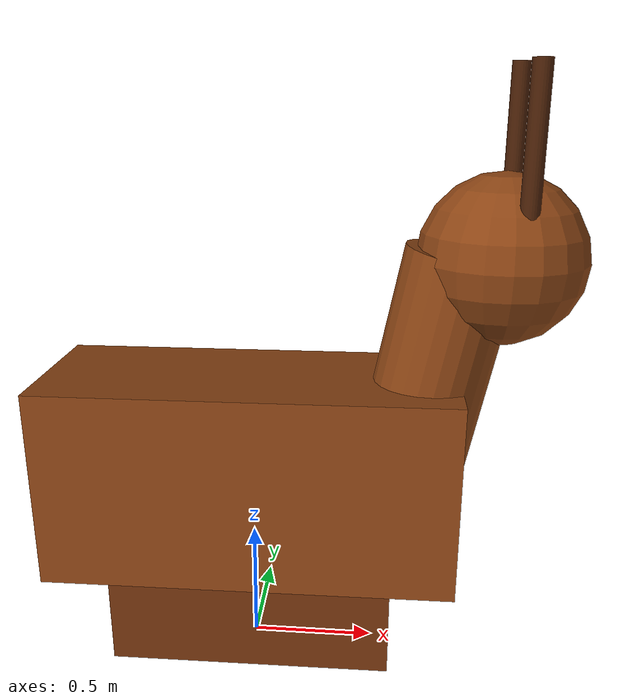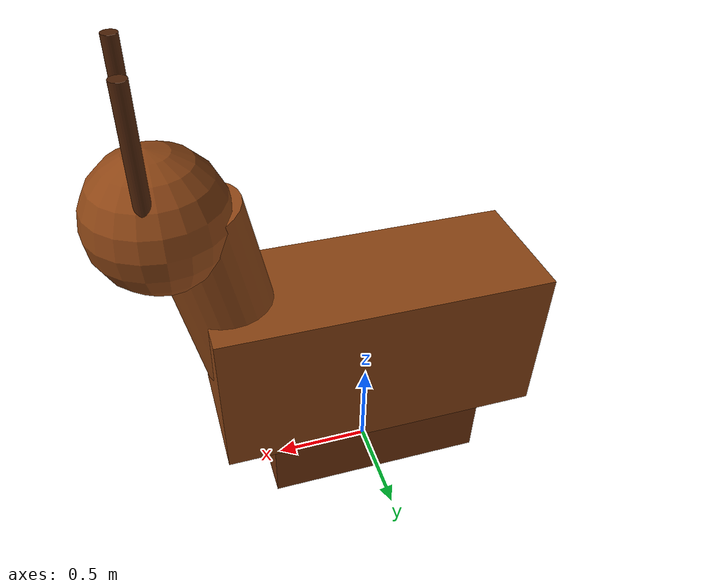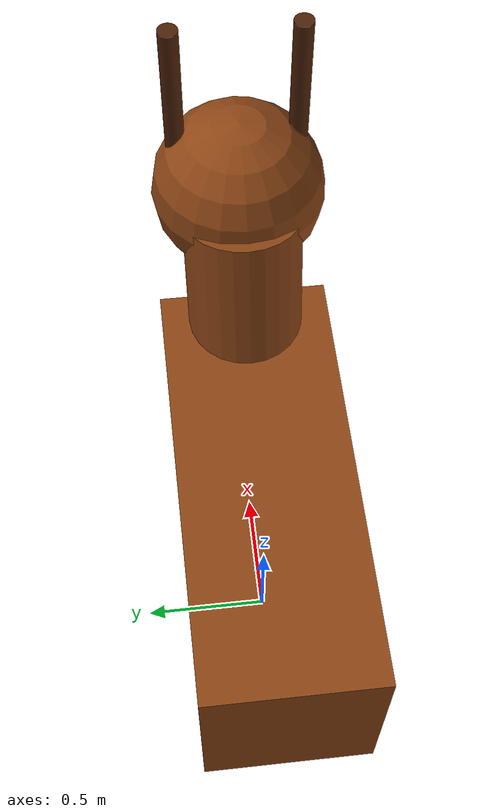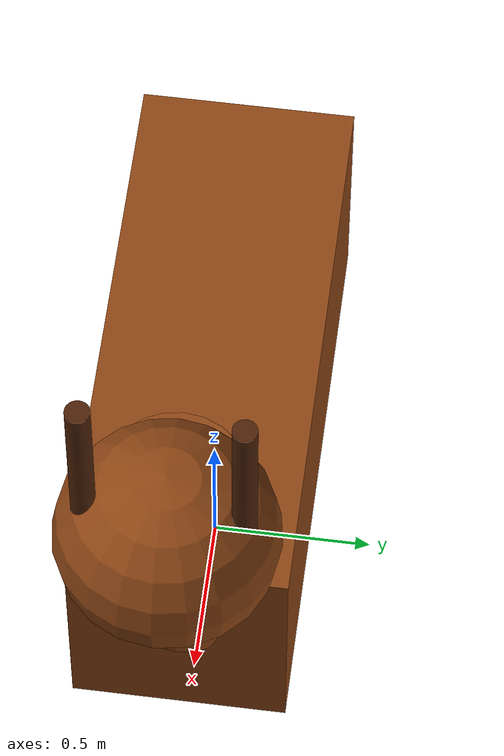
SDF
<?xml version="1.0"?>
<sdf version="1.9">
  <model name="deer">
    <static>true</static>
    <link name="body">
      <visual name="torso">
        <pose>0 0 0.8 0 0 0</pose>
        <geometry><box><size>1.65 0.65 0.8</size></box></geometry>
        <material><ambient>0.42 0.19 0.06 1</ambient><diffuse>0.55 0.27 0.08 1</diffuse></material>
      </visual>
      <visual name="neck">
        <pose>0.72 0 1.25 0 0.2 0</pose>
        <geometry><cylinder><radius>0.22</radius><length>0.9</length></cylinder></geometry>
        <material><ambient>0.42 0.19 0.06 1</ambient><diffuse>0.55 0.27 0.08 1</diffuse></material>
      </visual>
      <visual name="head">
        <pose>0.95 0 1.68 0 0 0</pose>
        <geometry><sphere><radius>0.32</radius></sphere></geometry>
        <material><ambient>0.42 0.19 0.06 1</ambient><diffuse>0.55 0.27 0.08 1</diffuse></material>
      </visual>
      <visual name="legs">
        <pose>0 0 0.28 0 0 0</pose>
        <geometry><box><size>1.15 0.5 0.56</size></box></geometry>
        <material><ambient>0.32 0.13 0.04 1</ambient><diffuse>0.45 0.2 0.05 1</diffuse></material>
      </visual>
      <visual name="antler_left">
        <pose>1.0 0.22 2.05 0 0 0</pose>
        <geometry><cylinder><radius>0.035</radius><length>0.65</length></cylinder></geometry>
        <material><ambient>0.2 0.09 0.02 1</ambient><diffuse>0.3 0.13 0.03 1</diffuse></material>
      </visual>
      <visual name="antler_right">
        <pose>1.0 -0.22 2.05 0 0 0</pose>
        <geometry><cylinder><radius>0.035</radius><length>0.65</length></cylinder></geometry>
        <material><ambient>0.2 0.09 0.02 1</ambient><diffuse>0.3 0.13 0.03 1</diffuse></material>
      </visual>
    </link>
  </model>
</sdf>
